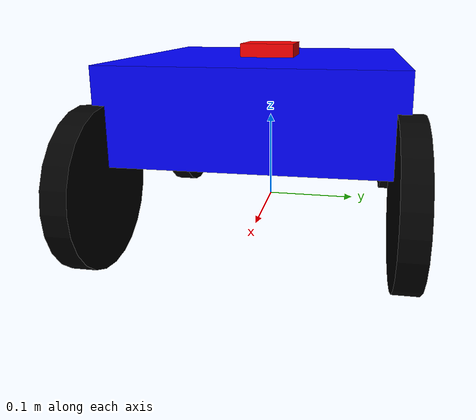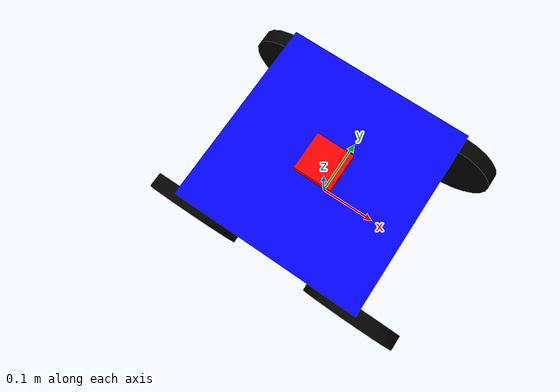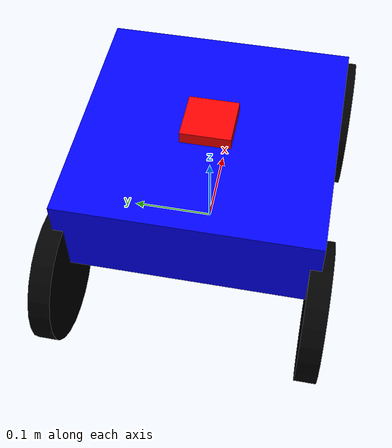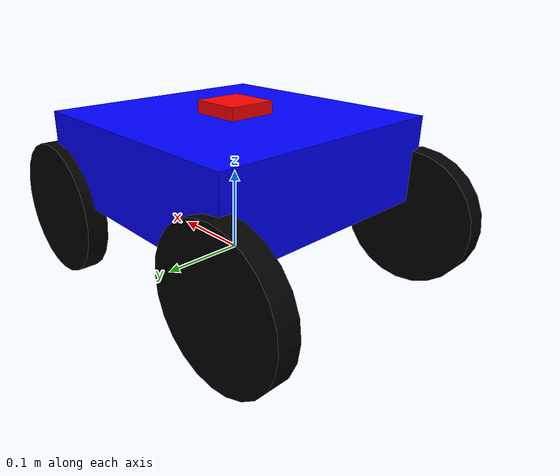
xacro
<?xml version="1.0"?>
<robot xmlns:xacro="http://www.ros.org/wiki/xacro" name="my_nav2_bot">

    <!--机器人身体-->
    <xacro:property name="chassis_length" value="0.3"/>
    <xacro:property name="chassis_width" value="0.3"/>
    <xacro:property name="chassis_height" value="0.1"/>

    <!--轮子形态（实车机械参数：轮半径 81.5mm）-->
    <xacro:property name="wheel_radius" value="0.0815"/>
    <xacro:property name="wheel_width" value="0.025"/>

    <!--轮子位置-->
    <xacro:property name="wheel_offset_x" value="${chassis_length / 2}"/>
    <xacro:property name="wheel_offset_y" value="${chassis_width / 2}"/>
    <xacro:property name="wheel_offset_z" value="-0.02"/>

    <!--机器人机身的物理属性-->
    <xacro:macro name="inertial_box" params="mass l w h *origin">
        <inertial>
            <xacro:insert_block name="origin"/>
            <mass value="${mass}"/>
            <inertia ixx="${(1/12) * mass * (w*w + h*h)}" ixy="0.0" ixz="0.0"
                    iyy="${(1/12) * mass * (l*l + h*h)}" iyz="0.0"
                    izz="${(1/12) * mass * (l*l + w*w)}"/>
        </inertial>
    </xacro:macro>

    <!--机器人轮胎的物理属性-->
    <xacro:macro name="inertial_cylinder" params="mass r h *origin">
        <inertial>
            <xacro:insert_block name="origin"/>
            <mass value="${mass}"/>
            <inertia ixx="${(1/12) * mass * (3*r*r + h*h)}" ixy="0.0" ixz="0.0"
                    iyy="${(1/12) * mass * (3*r*r + h*h)}" iyz="0.0"
                    izz="${(1/2) * mass * r*r}"/>
        </inertial>
    </xacro:macro>

    <!--声明材质颜色-->
    <material name="blue">
        <color rgba="0 0 1 1"/>
    </material>
    <material name="black">
        <color rgba="0 0 0 1"/>
    </material>
    <material name="red">
        <color rgba="1 0 0 1"/>
    </material>

    <!--机器人本体中心-->
    <link name="base_link">
        <visual>
            <origin xyz="0 0 ${chassis_height / 2}" rpy="0 0 0"/>
            <!--身体大小-->
            <geometry>
                <!--长方体-->
                <box size="${chassis_length} ${chassis_width} ${chassis_height}"/>
            </geometry>
            <material name="blue"/>
        </visual>
        <!--碰撞箱-->
        <collision>
            <origin xyz="0 0 ${chassis_height / 2}" rpy="0 0 0"/>
            <!--身体大小-->
            <geometry>
                <box size="${chassis_length} ${chassis_width} ${chassis_height}"/>
            </geometry>
        </collision>
        <!--物理属性-->
        <xacro:inertial_box mass="5.0" l="${chassis_length}" w="${chassis_width}" h="${chassis_height}">
            <origin xyz="0 0 ${chassis_height / 2}" rpy="0 0 0"/>
        </xacro:inertial_box>
    </link>

    <!--机器人中心在底面的投影-->
    <link name="base_footprint"/>

    <joint name="base_joint" type="fixed">
        <parent link="base_footprint"/>
        <child link="base_link"/>
        <origin xyz="0 0 ${chassis_height/2 - wheel_offset_z}" rpy="0 0 0"/>
    </joint>

    <!--轮子-->
    <xacro:macro name="wheel" params="prefix reflect_x reflect_y">

        <link name="${prefix}_wheel_link">
            <visual>
                <!--roll需要为pi/2的原因是圆柱体默认朝z轴向上，额这是之前的圆柱体代码，换成麦轮就不一样了-->
                <origin xyz="0 0 0" rpy="${pi / 2} 0 0"/>
                <geometry>
                    <!--圆柱体-->
                    <cylinder radius="${wheel_radius}" length="${wheel_width}"/>
                </geometry>
                <material name="black"/>
            </visual>
            <collision>
                <origin xyz="0 0 0" rpy="${pi / 2} 0 0"/>
                <geometry>
                    <!--圆柱体-->
                    <cylinder radius="${wheel_radius}" length="${wheel_width}"/>
                </geometry>
            </collision>
            <xacro:inertial_cylinder mass="0.5" r="${wheel_radius}" h="${wheel_width}">
                <origin xyz="0 0 0" rpy="${pi / 2} 0 0"/>
            </xacro:inertial_cylinder>
        </link>

        <joint name="${prefix}_wheel_joint" type="continuous">
            <parent link="base_link"/>
            <child link="${prefix}_wheel_link"/>
            <origin xyz="${reflect_x * wheel_offset_x} ${reflect_y * wheel_offset_y} ${wheel_offset_z}" rpy="0 0 0"/>
            <!--旋转轴-->
            <axis xyz="0 1 0"/>
            <limit effort="50" velocity="50"/>
            <dynamics damping="0.1" friction="0.1"/>
        </joint>

        <gazebo reference="${prefix}_wheel_link">
            <mu1>2.0</mu1>
            <mu2>0.5</mu2>
            <kp>1000000.0</kp>
            <kd>1.0</kd>
        </gazebo>
    </xacro:macro>

    <xacro:wheel prefix="front_left" reflect_x="1" reflect_y="1"/>
    <xacro:wheel prefix="front_right" reflect_x="1" reflect_y="-1"/>
    <xacro:wheel prefix="rear_left" reflect_x="-1" reflect_y="1"/>
    <xacro:wheel prefix="rear_right" reflect_x="-1" reflect_y="-1"/>

    <!--imu-->
    <link name = "imu_link">
        <visual>
            <geometry>
                <box size = "0.02 0.02 0.02"/>
            </geometry>
            <material name = "black"/>
        </visual>
        <xacro:inertial_box mass="0.01" l="0.02" w="0.02" h="0.02">
            <origin xyz="0 0 0" rpy="0 0 0"/>
        </xacro:inertial_box>
    </link>

    <joint name = "imu_joint" type = "fixed">
        <parent link = "base_link"/>
        <child link = "imu_link"/>
        <origin xyz="0 0 0" rpy="0 0 0"/>
    </joint>

    <!--livox lidar-->
    <link name="livox_frame">
        <visual>
            <geometry>
                <box size="0.06 0.06 0.03"/>
            </geometry>
            <material name="red"/>
        </visual>
    </link>

    <joint name="livox_joint" type="fixed">
        <parent link="base_link"/>
        <child link="livox_frame"/>
        <origin xyz="0 0 0.1" rpy="0 0 0"/>
    </joint>

</robot>
